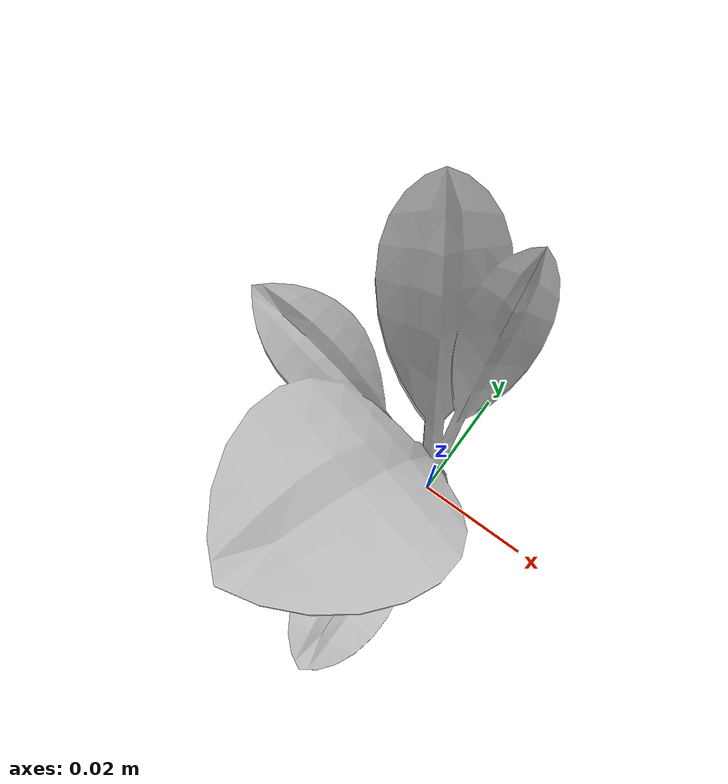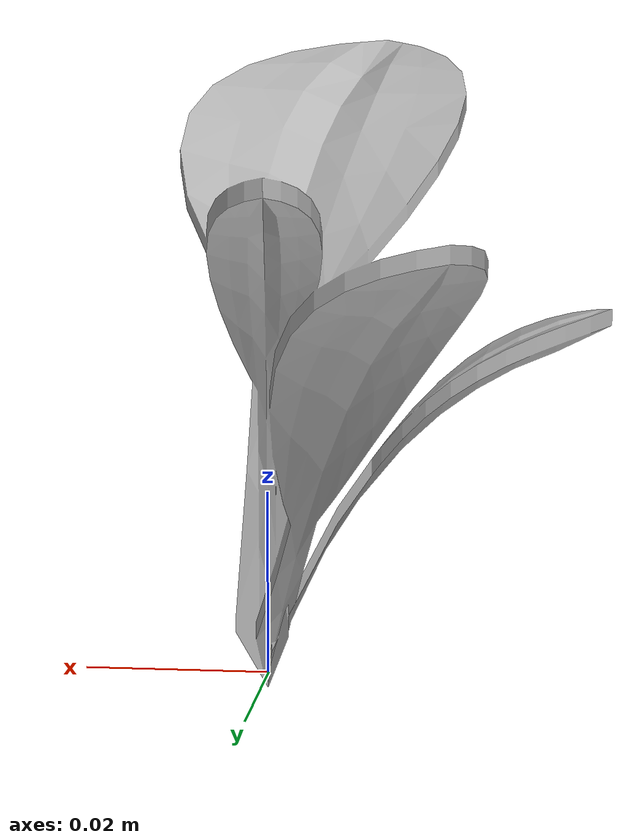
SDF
<sdf version="1.6">
  <model name="sugar_beet_6">
    <static>true</static>
    <link name="body">
      <visual name="visual">
        <geometry>
          <mesh>
            <uri>file:///sugar_beet_6/media/sugar_beet.dae</uri>
          </mesh>
        </geometry>
      </visual>
    </link>
  </model>
</sdf>
